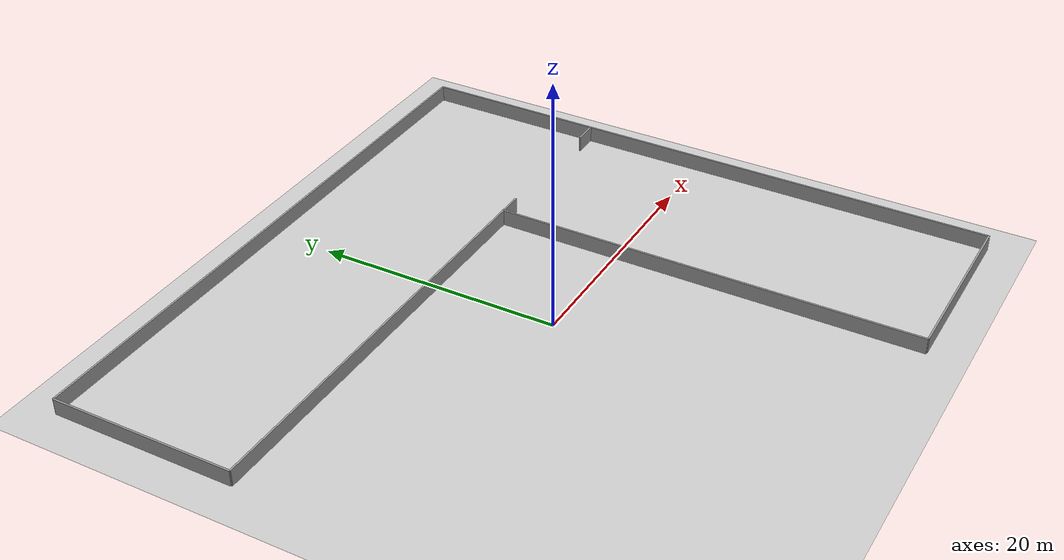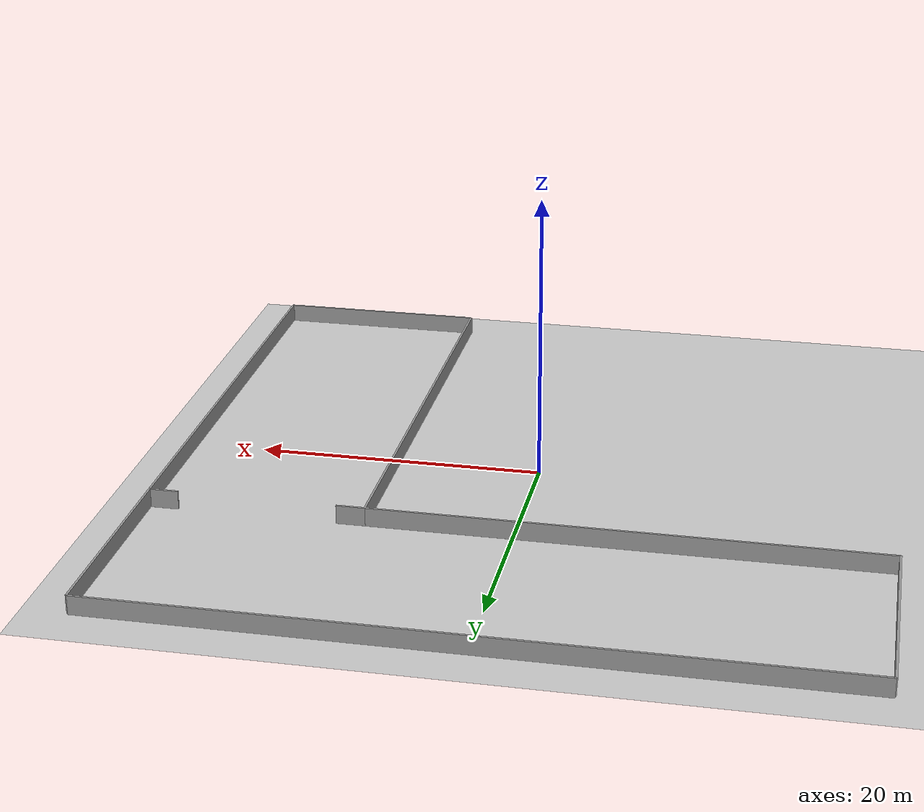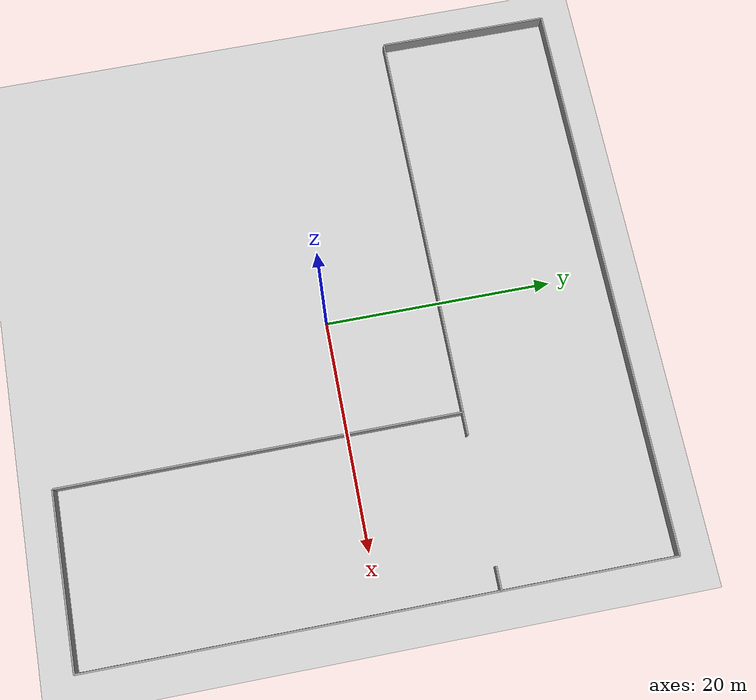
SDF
<sdf version="1.7">
 <world name="default">
  <plugin name="gazebo_occupancy_map" filename="libgazebo_2Dmap_plugin.so">
   <map_resolution>0.05</map_resolution>
   <map_height>0.3</map_height>
   <map_size_x>50</map_size_x>
   <map_size_y>50</map_size_y>
   <init_robot_x>15</init_robot_x>
   <init_robot_y>0</init_robot_y>
  </plugin>
  <light name="sun" type="directional">
   <pose>0 0 10 0 -0 0</pose>
   <diffuse>0.8 0.8 0.8 1</diffuse>
   <specular>0.2 0.2 0.2 1</specular>
   <attenuation>
    <range>1000</range>
    <constant>0.9</constant>
    <linear>0.01</linear>
    <quadratic>0.001</quadratic>
   </attenuation>
   <direction>-0.5 0.1 -0.9</direction>
   <spot><inner_angle>0</inner_angle><outer_angle>0</outer_angle><falloff>0</falloff></spot>
  </light>
  <model name="ground_plane">
   <static>1</static>
   <link name="link">
    <collision name="collision">
     <geometry><plane><normal>0 0 1</normal><size>100 100</size></plane></geometry>
     <surface>
      <contact><collide_bitmask>65535</collide_bitmask></contact>
      <friction><ode><mu>100</mu><mu2>50</mu2></ode></friction>
     </surface>
    </collision>
    <visual name="visual">
     <cast_shadows>0</cast_shadows>
     <geometry><plane><normal>0 0 1</normal><size>100 100</size></plane></geometry>
     <material>
      <script><uri>file://media/materials/scripts/gazebo.material</uri><name>Gazebo/Grey</name></script>
     </material>
    </visual>
   </link>
  </model>
  <gravity>0 0 -9.8</gravity>
  <magnetic_field>6e-06 2.3e-05 -4.2e-05</magnetic_field>
  <atmosphere type="adiabatic"/>
  <physics type="ode">
   <max_step_size>0.001</max_step_size>
   <real_time_factor>1</real_time_factor>
   <real_time_update_rate>1000</real_time_update_rate>
  </physics>
  <scene><ambient>0.4 0.4 0.4 1</ambient><background>0.7 0.7 0.7 1</background><shadows>1</shadows></scene>
  <spherical_coordinates>
   <surface_model>EARTH_WGS84</surface_model>
   <latitude_deg>0</latitude_deg>
   <longitude_deg>0</longitude_deg>
   <elevation>0</elevation>
   <heading_deg>0</heading_deg>
  </spherical_coordinates>
  <model name="wall">
   <link name="wall">
    <collision name="wall_Collision"><geometry><box><size>50 0.15 2.5</size></box></geometry></collision>
    <visual name="wall_visual">
     <geometry><box><size>50 0.15 2.5</size></box></geometry>
     <material>
      <script><uri>file://media/materials/scripts/gazebo.material</uri><name>Gazebo/Grey</name></script>
      <ambient>1 1 1 1</ambient>
     </material>
     <meta><layer>0</layer></meta>
    </visual>
   </link>
   <static>1</static>
   <pose>0 25 0 0 -0 0</pose>
  </model>
  <model name="wall_clone_0">
   <link name="wall">
    <collision name="wall_Collision"><geometry><box><size>50 0.15 2.5</size></box></geometry></collision>
    <visual name="wall_visual">
     <geometry><box><size>50 0.15 2.5</size></box></geometry>
     <material>
      <script><uri>file://media/materials/scripts/gazebo.material</uri><name>Gazebo/Grey</name></script>
      <ambient>1 1 1 1</ambient>
     </material>
     <meta><layer>0</layer></meta>
    </visual>
   </link>
   <static>1</static>
   <pose>25 0 0 0 -0 1.5697</pose>
  </model>
  <model name="wall15">
   <link name="wall">
    <collision name="wall_collision"><geometry><box><size>15 0.15 2.5</size></box></geometry></collision>
    <visual name="wall_visual">
     <geometry><box><size>15 0.15 2.5</size></box></geometry>
     <material>
      <script><uri>file://media/materials/scripts/gazebo.material</uri><name>Gazebo/Grey</name></script>
      <ambient>1 1 1 1</ambient>
     </material>
     <meta><layer>0</layer></meta>
    </visual>
   </link>
   <static>1</static>
   <pose>-25 17.5 0 0 -0 1.5697</pose>
  </model>
  <model name="wall15_clone">
   <link name="wall">
    <collision name="wall_collision"><geometry><box><size>15 0.15 2.5</size></box></geometry></collision>
    <visual name="wall_visual">
     <geometry><box><size>15 0.15 2.5</size></box></geometry>
     <material>
      <script><uri>file://media/materials/scripts/gazebo.material</uri><name>Gazebo/Grey</name></script>
      <ambient>1 1 1 1</ambient>
     </material>
     <meta><layer>0</layer></meta>
    </visual>
   </link>
   <static>1</static>
   <pose>17.5 -25 0 0 -0 0</pose>
  </model>
  <model name="wall35">
   <link name="wall">
    <collision name="wall_collision"><geometry><box><size>35 0.15 2.5</size></box></geometry></collision>
    <visual name="wall_visual">
     <geometry><box><size>35 0.15 2.5</size></box></geometry>
     <material>
      <script><uri>file://media/materials/scripts/gazebo.material</uri><name>Gazebo/Grey</name></script>
      <ambient>1 1 1 1</ambient>
     </material>
     <meta><layer>0</layer></meta>
    </visual>
   </link>
   <static>1</static>
   <pose>-7.5 10 0 0 -0 0</pose>
  </model>
  <model name="wall35_clone">
   <link name="wall">
    <collision name="wall_collision"><geometry><box><size>35 0.15 2.5</size></box></geometry></collision>
    <visual name="wall_visual">
     <geometry><box><size>35 0.15 2.5</size></box></geometry>
     <material>
      <script><uri>file://media/materials/scripts/gazebo.material</uri><name>Gazebo/Grey</name></script>
      <ambient>1 1 1 1</ambient>
     </material>
     <meta><layer>0</layer></meta>
    </visual>
   </link>
   <static>1</static>
   <pose>10 -7.5 0 0 -0 1.5697</pose>
  </model>
  <model name="wall2">
   <link name="wall">
    <collision name="wall_collision"><geometry><box><size>2 0.15 2.5</size></box></geometry></collision>
    <visual name="wall_visual">
     <geometry><box><size>2 0.15 2.5</size></box></geometry>
     <material>
      <script><uri>file://media/materials/scripts/gazebo.material</uri><name>Gazebo/Grey</name></script>
      <ambient>1 1 1 1</ambient>
     </material>
     <meta><layer>0</layer></meta>
    </visual>
   </link>
   <static>1</static>
   <pose>11 10 0 0 -0 0</pose>
  </model>
  <model name="wall2_clone">
   <link name="wall">
    <collision name="wall_collision"><geometry><box><size>2 0.15 2.5</size></box></geometry></collision>
    <visual name="wall_visual">
     <geometry><box><size>2 0.15 2.5</size></box></geometry>
     <material>
      <script><uri>file://media/materials/scripts/gazebo.material</uri><name>Gazebo/Grey</name></script>
      <ambient>1 1 1 1</ambient>
     </material>
     <meta><layer>0</layer></meta>
    </visual>
   </link>
   <static>1</static>
   <pose>24 10 0 0 -0 0</pose>
  </model>
 </world>
</sdf>
